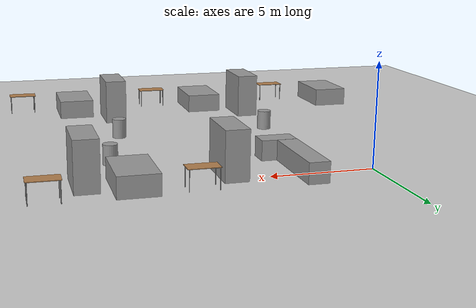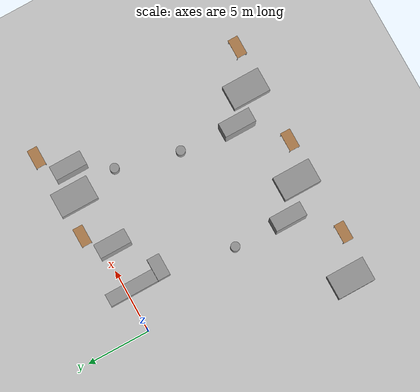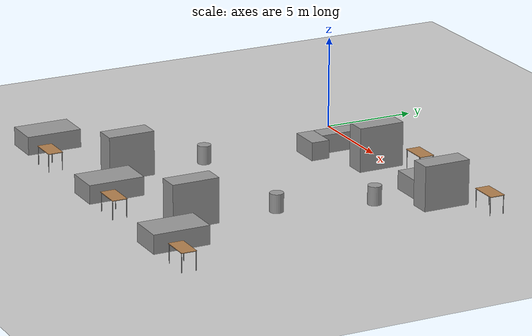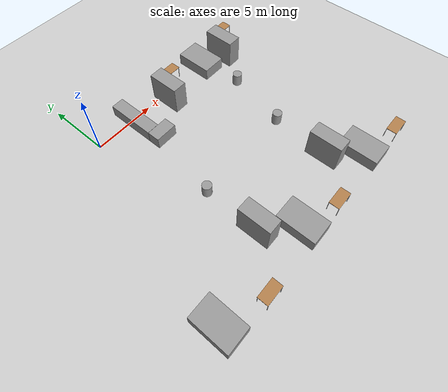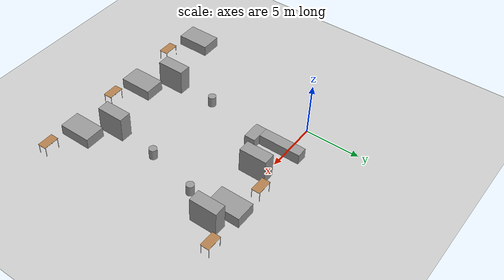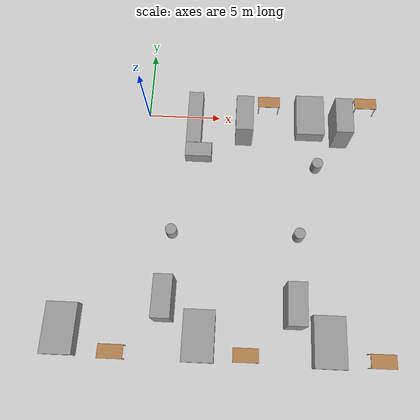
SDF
<sdf version="1.6">
 <world name="default">
  <model name="ground_plane">
   <static>1</static>
   <link name="link">
    <collision name="collision">
     <geometry><plane><normal>0 0 1</normal><size>100 100</size></plane></geometry>
     <surface><friction><ode><mu>100</mu><mu2>50</mu2></ode></friction></surface>
    </collision>
    <visual name="visual">
     <cast_shadows>0</cast_shadows>
     <geometry><plane><normal>0 0 1</normal><size>100 100</size></plane></geometry>
     <material>
      <script><uri>file://media/materials/scripts/gazebo.material</uri><name>Gazebo/Grey</name></script>
     </material>
    </visual>
   </link>
  </model>
  <model name="unit_box">
   <pose>3.2998 -0.444177 0.499344 -0.000337 -0 1e-06</pose>
   <link name="link">
    <inertial>
     <mass>1</mass>
     <inertia>
      <ixx>0.166667</ixx>
      <ixy>0</ixy>
      <ixz>0</ixz>
      <iyy>0.166667</iyy>
      <iyz>0</iyz>
      <izz>0.166667</izz>
     </inertia>
    </inertial>
    <collision name="collision"><geometry><box><size>1 3.8944 1</size></box></geometry></collision>
    <visual name="visual">
     <geometry><box><size>1 3.8944 1</size></box></geometry>
     <material>
      <script><name>Gazebo/Grey</name><uri>file://media/materials/scripts/gazebo.material</uri></script>
     </material>
    </visual>
   </link>
  </model>
  <model name="unit_box_0">
   <pose>3.68233 -2.9013 0.5 -0 -0 -3e-06</pose>
   <link name="link">
    <inertial>
     <mass>1</mass>
     <inertia>
      <ixx>0.166667</ixx>
      <ixy>0</ixy>
      <ixz>0</ixz>
      <iyy>0.166667</iyy>
      <iyz>0</iyz>
      <izz>0.166667</izz>
     </inertia>
    </inertial>
    <collision name="collision"><geometry><box><size>1.75689 1 1</size></box></geometry></collision>
    <visual name="visual">
     <geometry><box><size>1.75689 1 1</size></box></geometry>
     <material>
      <script><name>Gazebo/Grey</name><uri>file://media/materials/scripts/gazebo.material</uri></script>
     </material>
    </visual>
   </link>
  </model>
  <model name="unit_box_1">
   <pose>-3.83089 -14.795 0.499826 0.000116 -0 0</pose>
   <link name="link">
    <inertial>
     <mass>1</mass>
     <inertia>
      <ixx>0.166667</ixx>
      <ixy>0</ixy>
      <ixz>0</ixz>
      <iyy>0.166667</iyy>
      <iyz>0</iyz>
      <izz>0.166667</izz>
     </inertia>
    </inertial>
    <collision name="collision"><geometry><box><size>1.90543 2.99439 1</size></box></geometry></collision>
    <visual name="visual">
     <geometry><box><size>1.90543 2.99439 1</size></box></geometry>
     <material>
      <script><name>Gazebo/Grey</name><uri>file://media/materials/scripts/gazebo.material</uri></script>
     </material>
    </visual>
   </link>
  </model>
  <model name="unit_box_2">
   <pose>2.22958 -12.8856 1.19041 0 -0 9.2e-05</pose>
   <link name="link">
    <inertial>
     <mass>1</mass>
     <inertia>
      <ixx>0.166667</ixx>
      <ixy>0</ixy>
      <ixz>0</ixz>
      <iyy>0.166667</iyy>
      <iyz>0</iyz>
      <izz>0.166667</izz>
     </inertia>
    </inertial>
    <collision name="collision"><geometry><box><size>1.13758 2.51147 2.38082</size></box></geometry></collision>
    <visual name="visual">
     <geometry><box><size>1.13758 2.51147 2.38082</size></box></geometry>
     <material>
      <script><name>Gazebo/Grey</name><uri>file://media/materials/scripts/gazebo.material</uri></script>
     </material>
    </visual>
   </link>
  </model>
  <model name="table">
   <static>1</static>
   <link name="link">
    <collision name="surface">
     <pose>0 0 1 0 -0 0</pose>
     <geometry><box><size>1.5 0.8 0.03</size></box></geometry>
     <surface><friction><ode><mu>0.6</mu><mu2>0.6</mu2></ode></friction></surface>
    </collision>
    <visual name="visual1">
     <pose>0 0 1 0 -0 0</pose>
     <geometry><box><size>1.5 0.8 0.03</size></box></geometry>
     <material>
      <script><uri>file://media/materials/scripts/gazebo.material</uri><name>Gazebo/Wood</name></script>
     </material>
    </visual>
    <collision name="front_left_leg">
     <pose>0.68 0.38 0.5 0 -0 0</pose>
     <geometry><cylinder><radius>0.02</radius><length>1</length></cylinder></geometry>
    </collision>
    <visual name="front_left_leg">
     <pose>0.68 0.38 0.5 0 -0 0</pose>
     <geometry><cylinder><radius>0.02</radius><length>1</length></cylinder></geometry>
     <material>
      <script><uri>file://media/materials/scripts/gazebo.material</uri><name>Gazebo/Grey</name></script>
     </material>
    </visual>
    <collision name="front_right_leg">
     <pose>0.68 -0.38 0.5 0 -0 0</pose>
     <geometry><cylinder><radius>0.02</radius><length>1</length></cylinder></geometry>
    </collision>
    <visual name="front_right_leg">
     <pose>0.68 -0.38 0.5 0 -0 0</pose>
     <geometry><cylinder><radius>0.02</radius><length>1</length></cylinder></geometry>
     <material>
      <script><uri>file://media/materials/scripts/gazebo.material</uri><name>Gazebo/Grey</name></script>
     </material>
    </visual>
    <collision name="back_right_leg">
     <pose>-0.68 -0.38 0.5 0 -0 0</pose>
     <geometry><cylinder><radius>0.02</radius><length>1</length></cylinder></geometry>
    </collision>
    <visual name="back_right_leg">
     <pose>-0.68 -0.38 0.5 0 -0 0</pose>
     <geometry><cylinder><radius>0.02</radius><length>1</length></cylinder></geometry>
     <material>
      <script><uri>file://media/materials/scripts/gazebo.material</uri><name>Gazebo/Grey</name></script>
     </material>
    </visual>
    <collision name="back_left_leg">
     <pose>-0.68 0.38 0.5 0 -0 0</pose>
     <geometry><cylinder><radius>0.02</radius><length>1</length></cylinder></geometry>
    </collision>
    <visual name="back_left_leg">
     <pose>-0.68 0.38 0.5 0 -0 0</pose>
     <geometry><cylinder><radius>0.02</radius><length>1</length></cylinder></geometry>
     <material>
      <script><uri>file://media/materials/scripts/gazebo.material</uri><name>Gazebo/Grey</name></script>
     </material>
    </visual>
   </link>
   <pose>-0.637002 -15.9868 0 0 -0 0</pose>
  </model>
  <model name="unit_cylinder">
   <pose>2.28154 -8.54366 0.499997 1e-06 1e-06 0</pose>
   <link name="link">
    <inertial>
     <mass>1</mass>
     <inertia><ixx>0.145833</ixx><ixy>0</ixy><ixz>0</ixz><iyy>0.145833</iyy><iyz>0</iyz><izz>0.125</izz></inertia>
    </inertial>
    <collision name="collision">
     <geometry><cylinder><radius>0.361483</radius><length>1</length></cylinder></geometry>
    </collision>
    <visual name="visual">
     <geometry><cylinder><radius>0.361483</radius><length>1</length></cylinder></geometry>
     <material>
      <script><name>Gazebo/Grey</name><uri>file://media/materials/scripts/gazebo.material</uri></script>
     </material>
    </visual>
   </link>
  </model>
  <model name="unit_box_1_clone">
   <pose>4.40143 -14.8913 0.499995 0 5e-06 4.6e-05</pose>
   <link name="link">
    <inertial>
     <mass>1</mass>
     <inertia>
      <ixx>0.166667</ixx>
      <ixy>0</ixy>
      <ixz>0</ixz>
      <iyy>0.166667</iyy>
      <iyz>0</iyz>
      <izz>0.166667</izz>
     </inertia>
    </inertial>
    <collision name="collision"><geometry><box><size>1.90543 2.99439 1</size></box></geometry></collision>
    <visual name="visual">
     <geometry><box><size>1.90543 2.99439 1</size></box></geometry>
     <material>
      <script><name>Gazebo/Grey</name><uri>file://media/materials/scripts/gazebo.material</uri></script>
     </material>
    </visual>
   </link>
  </model>
  <model name="unit_box_1_clone_0">
   <pose>12.1162 -14.9285 0.499826 -0.000116 -0 1.3e-05</pose>
   <link name="link">
    <inertial>
     <mass>1</mass>
     <inertia>
      <ixx>0.166667</ixx>
      <ixy>0</ixy>
      <ixz>0</ixz>
      <iyy>0.166667</iyy>
      <iyz>0</iyz>
      <izz>0.166667</izz>
     </inertia>
    </inertial>
    <collision name="collision"><geometry><box><size>1.90543 2.99439 1</size></box></geometry></collision>
    <visual name="visual">
     <geometry><box><size>1.90543 2.99439 1</size></box></geometry>
     <material>
      <script><name>Gazebo/Grey</name><uri>file://media/materials/scripts/gazebo.material</uri></script>
     </material>
    </visual>
   </link>
  </model>
  <model name="unit_box_1_clone_5">
   <pose>11.2277 0.005864 0.499995 -0 -5e-06 -5.8e-05</pose>
   <link name="link">
    <inertial>
     <mass>1</mass>
     <inertia>
      <ixx>0.166667</ixx>
      <ixy>0</ixy>
      <ixz>0</ixz>
      <iyy>0.166667</iyy>
      <iyz>0</iyz>
      <izz>0.166667</izz>
     </inertia>
    </inertial>
    <collision name="collision"><geometry><box><size>1.90543 2.99439 1</size></box></geometry></collision>
    <visual name="visual">
     <geometry><box><size>1.90543 2.99439 1</size></box></geometry>
     <material>
      <script><name>Gazebo/Grey</name><uri>file://media/materials/scripts/gazebo.material</uri></script>
     </material>
    </visual>
   </link>
  </model>
  <model name="unit_cylinder_clone">
   <pose>10.4238 -8.47668 0.499993 -0 -0 -0</pose>
   <link name="link">
    <inertial>
     <mass>1</mass>
     <inertia><ixx>0.145833</ixx><ixy>0</ixy><ixz>0</ixz><iyy>0.145833</iyy><iyz>0</iyz><izz>0.125</izz></inertia>
    </inertial>
    <collision name="collision">
     <geometry><cylinder><radius>0.361483</radius><length>1</length></cylinder></geometry>
    </collision>
    <visual name="visual">
     <geometry><cylinder><radius>0.361483</radius><length>1</length></cylinder></geometry>
     <material>
      <script><name>Gazebo/Grey</name><uri>file://media/materials/scripts/gazebo.material</uri></script>
     </material>
    </visual>
   </link>
  </model>
  <model name="unit_box_2_clone">
   <pose>10.0557 -12.9992 1.19041 0 -0 9.3e-05</pose>
   <link name="link">
    <inertial>
     <mass>1</mass>
     <inertia>
      <ixx>0.166667</ixx>
      <ixy>0</ixy>
      <ixz>0</ixz>
      <iyy>0.166667</iyy>
      <iyz>0</iyz>
      <izz>0.166667</izz>
     </inertia>
    </inertial>
    <collision name="collision"><geometry><box><size>1.13758 2.51147 2.38082</size></box></geometry></collision>
    <visual name="visual">
     <geometry><box><size>1.13758 2.51147 2.38082</size></box></geometry>
     <material>
      <script><name>Gazebo/Grey</name><uri>file://media/materials/scripts/gazebo.material</uri></script>
     </material>
    </visual>
   </link>
  </model>
  <model name="unit_box_2_clone_5">
   <pose>13.2562 -0.684257 1.19041 0 -0 9.3e-05</pose>
   <link name="link">
    <inertial>
     <mass>1</mass>
     <inertia>
      <ixx>0.166667</ixx>
      <ixy>0</ixy>
      <ixz>0</ixz>
      <iyy>0.166667</iyy>
      <iyz>0</iyz>
      <izz>0.166667</izz>
     </inertia>
    </inertial>
    <collision name="collision"><geometry><box><size>1.13758 2.51147 2.38082</size></box></geometry></collision>
    <visual name="visual">
     <geometry><box><size>1.13758 2.51147 2.38082</size></box></geometry>
     <material>
      <script><name>Gazebo/Grey</name><uri>file://media/materials/scripts/gazebo.material</uri></script>
     </material>
    </visual>
   </link>
  </model>
  <model name="unit_box_2_clone_6">
   <pose>6.69613 -0.765561 1.19041 0 -0 9.3e-05</pose>
   <link name="link">
    <inertial>
     <mass>1</mass>
     <inertia>
      <ixx>0.166667</ixx>
      <ixy>0</ixy>
      <ixz>0</ixz>
      <iyy>0.166667</iyy>
      <iyz>0</iyz>
      <izz>0.166667</izz>
     </inertia>
    </inertial>
    <collision name="collision"><geometry><box><size>1.13758 2.51147 2.38082</size></box></geometry></collision>
    <visual name="visual">
     <geometry><box><size>1.13758 2.51147 2.38082</size></box></geometry>
     <material>
      <script><name>Gazebo/Grey</name><uri>file://media/materials/scripts/gazebo.material</uri></script>
     </material>
    </visual>
   </link>
  </model>
  <model name="table_clone">
   <static>1</static>
   <link name="link">
    <collision name="surface">
     <pose>0 0 1 0 -0 0</pose>
     <geometry><box><size>1.5 0.8 0.03</size></box></geometry>
     <surface><friction><ode><mu>0.6</mu><mu2>0.6</mu2></ode></friction></surface>
    </collision>
    <visual name="visual1">
     <pose>0 0 1 0 -0 0</pose>
     <geometry><box><size>1.5 0.8 0.03</size></box></geometry>
     <material>
      <script><uri>file://media/materials/scripts/gazebo.material</uri><name>Gazebo/Wood</name></script>
     </material>
    </visual>
    <collision name="front_left_leg">
     <pose>0.68 0.38 0.5 0 -0 0</pose>
     <geometry><cylinder><radius>0.02</radius><length>1</length></cylinder></geometry>
    </collision>
    <visual name="front_left_leg">
     <pose>0.68 0.38 0.5 0 -0 0</pose>
     <geometry><cylinder><radius>0.02</radius><length>1</length></cylinder></geometry>
     <material>
      <script><uri>file://media/materials/scripts/gazebo.material</uri><name>Gazebo/Grey</name></script>
     </material>
    </visual>
    <collision name="front_right_leg">
     <pose>0.68 -0.38 0.5 0 -0 0</pose>
     <geometry><cylinder><radius>0.02</radius><length>1</length></cylinder></geometry>
    </collision>
    <visual name="front_right_leg">
     <pose>0.68 -0.38 0.5 0 -0 0</pose>
     <geometry><cylinder><radius>0.02</radius><length>1</length></cylinder></geometry>
     <material>
      <script><uri>file://media/materials/scripts/gazebo.material</uri><name>Gazebo/Grey</name></script>
     </material>
    </visual>
    <collision name="back_right_leg">
     <pose>-0.68 -0.38 0.5 0 -0 0</pose>
     <geometry><cylinder><radius>0.02</radius><length>1</length></cylinder></geometry>
    </collision>
    <visual name="back_right_leg">
     <pose>-0.68 -0.38 0.5 0 -0 0</pose>
     <geometry><cylinder><radius>0.02</radius><length>1</length></cylinder></geometry>
     <material>
      <script><uri>file://media/materials/scripts/gazebo.material</uri><name>Gazebo/Grey</name></script>
     </material>
    </visual>
    <collision name="back_left_leg">
     <pose>-0.68 0.38 0.5 0 -0 0</pose>
     <geometry><cylinder><radius>0.02</radius><length>1</length></cylinder></geometry>
    </collision>
    <visual name="back_left_leg">
     <pose>-0.68 0.38 0.5 0 -0 0</pose>
     <geometry><cylinder><radius>0.02</radius><length>1</length></cylinder></geometry>
     <material>
      <script><uri>file://media/materials/scripts/gazebo.material</uri><name>Gazebo/Grey</name></script>
     </material>
    </visual>
   </link>
   <pose>7.19745 -15.8766 0 0 -0 0</pose>
  </model>
  <model name="table_clone_0">
   <static>1</static>
   <link name="link">
    <collision name="surface">
     <pose>0 0 1 0 -0 0</pose>
     <geometry><box><size>1.5 0.8 0.03</size></box></geometry>
     <surface><friction><ode><mu>0.6</mu><mu2>0.6</mu2></ode></friction></surface>
    </collision>
    <visual name="visual1">
     <pose>0 0 1 0 -0 0</pose>
     <geometry><box><size>1.5 0.8 0.03</size></box></geometry>
     <material>
      <script><uri>file://media/materials/scripts/gazebo.material</uri><name>Gazebo/Wood</name></script>
     </material>
    </visual>
    <collision name="front_left_leg">
     <pose>0.68 0.38 0.5 0 -0 0</pose>
     <geometry><cylinder><radius>0.02</radius><length>1</length></cylinder></geometry>
    </collision>
    <visual name="front_left_leg">
     <pose>0.68 0.38 0.5 0 -0 0</pose>
     <geometry><cylinder><radius>0.02</radius><length>1</length></cylinder></geometry>
     <material>
      <script><uri>file://media/materials/scripts/gazebo.material</uri><name>Gazebo/Grey</name></script>
     </material>
    </visual>
    <collision name="front_right_leg">
     <pose>0.68 -0.38 0.5 0 -0 0</pose>
     <geometry><cylinder><radius>0.02</radius><length>1</length></cylinder></geometry>
    </collision>
    <visual name="front_right_leg">
     <pose>0.68 -0.38 0.5 0 -0 0</pose>
     <geometry><cylinder><radius>0.02</radius><length>1</length></cylinder></geometry>
     <material>
      <script><uri>file://media/materials/scripts/gazebo.material</uri><name>Gazebo/Grey</name></script>
     </material>
    </visual>
    <collision name="back_right_leg">
     <pose>-0.68 -0.38 0.5 0 -0 0</pose>
     <geometry><cylinder><radius>0.02</radius><length>1</length></cylinder></geometry>
    </collision>
    <visual name="back_right_leg">
     <pose>-0.68 -0.38 0.5 0 -0 0</pose>
     <geometry><cylinder><radius>0.02</radius><length>1</length></cylinder></geometry>
     <material>
      <script><uri>file://media/materials/scripts/gazebo.material</uri><name>Gazebo/Grey</name></script>
     </material>
    </visual>
    <collision name="back_left_leg">
     <pose>-0.68 0.38 0.5 0 -0 0</pose>
     <geometry><cylinder><radius>0.02</radius><length>1</length></cylinder></geometry>
    </collision>
    <visual name="back_left_leg">
     <pose>-0.68 0.38 0.5 0 -0 0</pose>
     <geometry><cylinder><radius>0.02</radius><length>1</length></cylinder></geometry>
     <material>
      <script><uri>file://media/materials/scripts/gazebo.material</uri><name>Gazebo/Grey</name></script>
     </material>
    </visual>
   </link>
   <pose>15.1339 -15.8739 0 0 -0 0</pose>
  </model>
  <model name="table_clone_5">
   <static>1</static>
   <link name="link">
    <collision name="surface">
     <pose>0 0 1 0 -0 0</pose>
     <geometry><box><size>1.5 0.8 0.03</size></box></geometry>
     <surface><friction><ode><mu>0.6</mu><mu2>0.6</mu2></ode></friction></surface>
    </collision>
    <visual name="visual1">
     <pose>0 0 1 0 -0 0</pose>
     <geometry><box><size>1.5 0.8 0.03</size></box></geometry>
     <material>
      <script><uri>file://media/materials/scripts/gazebo.material</uri><name>Gazebo/Wood</name></script>
     </material>
    </visual>
    <collision name="front_left_leg">
     <pose>0.68 0.38 0.5 0 -0 0</pose>
     <geometry><cylinder><radius>0.02</radius><length>1</length></cylinder></geometry>
    </collision>
    <visual name="front_left_leg">
     <pose>0.68 0.38 0.5 0 -0 0</pose>
     <geometry><cylinder><radius>0.02</radius><length>1</length></cylinder></geometry>
     <material>
      <script><uri>file://media/materials/scripts/gazebo.material</uri><name>Gazebo/Grey</name></script>
     </material>
    </visual>
    <collision name="front_right_leg">
     <pose>0.68 -0.38 0.5 0 -0 0</pose>
     <geometry><cylinder><radius>0.02</radius><length>1</length></cylinder></geometry>
    </collision>
    <visual name="front_right_leg">
     <pose>0.68 -0.38 0.5 0 -0 0</pose>
     <geometry><cylinder><radius>0.02</radius><length>1</length></cylinder></geometry>
     <material>
      <script><uri>file://media/materials/scripts/gazebo.material</uri><name>Gazebo/Grey</name></script>
     </material>
    </visual>
    <collision name="back_right_leg">
     <pose>-0.68 -0.38 0.5 0 -0 0</pose>
     <geometry><cylinder><radius>0.02</radius><length>1</length></cylinder></geometry>
    </collision>
    <visual name="back_right_leg">
     <pose>-0.68 -0.38 0.5 0 -0 0</pose>
     <geometry><cylinder><radius>0.02</radius><length>1</length></cylinder></geometry>
     <material>
      <script><uri>file://media/materials/scripts/gazebo.material</uri><name>Gazebo/Grey</name></script>
     </material>
    </visual>
    <collision name="back_left_leg">
     <pose>-0.68 0.38 0.5 0 -0 0</pose>
     <geometry><cylinder><radius>0.02</radius><length>1</length></cylinder></geometry>
    </collision>
    <visual name="back_left_leg">
     <pose>-0.68 0.38 0.5 0 -0 0</pose>
     <geometry><cylinder><radius>0.02</radius><length>1</length></cylinder></geometry>
     <material>
      <script><uri>file://media/materials/scripts/gazebo.material</uri><name>Gazebo/Grey</name></script>
     </material>
    </visual>
   </link>
   <pose>8.37376 0.883401 0 0 -0 0</pose>
  </model>
  <model name="table_clone_6">
   <static>1</static>
   <link name="link">
    <collision name="surface">
     <pose>0 0 1 0 -0 0</pose>
     <geometry><box><size>1.5 0.8 0.03</size></box></geometry>
     <surface><friction><ode><mu>0.6</mu><mu2>0.6</mu2></ode></friction></surface>
    </collision>
    <visual name="visual1">
     <pose>0 0 1 0 -0 0</pose>
     <geometry><box><size>1.5 0.8 0.03</size></box></geometry>
     <material>
      <script><uri>file://media/materials/scripts/gazebo.material</uri><name>Gazebo/Wood</name></script>
     </material>
    </visual>
    <collision name="front_left_leg">
     <pose>0.68 0.38 0.5 0 -0 0</pose>
     <geometry><cylinder><radius>0.02</radius><length>1</length></cylinder></geometry>
    </collision>
    <visual name="front_left_leg">
     <pose>0.68 0.38 0.5 0 -0 0</pose>
     <geometry><cylinder><radius>0.02</radius><length>1</length></cylinder></geometry>
     <material>
      <script><uri>file://media/materials/scripts/gazebo.material</uri><name>Gazebo/Grey</name></script>
     </material>
    </visual>
    <collision name="front_right_leg">
     <pose>0.68 -0.38 0.5 0 -0 0</pose>
     <geometry><cylinder><radius>0.02</radius><length>1</length></cylinder></geometry>
    </collision>
    <visual name="front_right_leg">
     <pose>0.68 -0.38 0.5 0 -0 0</pose>
     <geometry><cylinder><radius>0.02</radius><length>1</length></cylinder></geometry>
     <material>
      <script><uri>file://media/materials/scripts/gazebo.material</uri><name>Gazebo/Grey</name></script>
     </material>
    </visual>
    <collision name="back_right_leg">
     <pose>-0.68 -0.38 0.5 0 -0 0</pose>
     <geometry><cylinder><radius>0.02</radius><length>1</length></cylinder></geometry>
    </collision>
    <visual name="back_right_leg">
     <pose>-0.68 -0.38 0.5 0 -0 0</pose>
     <geometry><cylinder><radius>0.02</radius><length>1</length></cylinder></geometry>
     <material>
      <script><uri>file://media/materials/scripts/gazebo.material</uri><name>Gazebo/Grey</name></script>
     </material>
    </visual>
    <collision name="back_left_leg">
     <pose>-0.68 0.38 0.5 0 -0 0</pose>
     <geometry><cylinder><radius>0.02</radius><length>1</length></cylinder></geometry>
    </collision>
    <visual name="back_left_leg">
     <pose>-0.68 0.38 0.5 0 -0 0</pose>
     <geometry><cylinder><radius>0.02</radius><length>1</length></cylinder></geometry>
     <material>
      <script><uri>file://media/materials/scripts/gazebo.material</uri><name>Gazebo/Grey</name></script>
     </material>
    </visual>
   </link>
   <pose>15.0803 1.04265 0 0 -0 0</pose>
  </model>
  <model name="unit_cylinder_clone_3">
   <pose>11.6494 -3.59513 0.499993 -1e-06 -1e-06 0</pose>
   <link name="link">
    <inertial>
     <mass>1</mass>
     <inertia><ixx>0.145833</ixx><ixy>0</ixy><ixz>0</ixz><iyy>0.145833</iyy><iyz>0</iyz><izz>0.125</izz></inertia>
    </inertial>
    <collision name="collision">
     <geometry><cylinder><radius>0.361483</radius><length>1</length></cylinder></geometry>
    </collision>
    <visual name="visual">
     <geometry><cylinder><radius>0.361483</radius><length>1</length></cylinder></geometry>
     <material>
      <script><name>Gazebo/Grey</name><uri>file://media/materials/scripts/gazebo.material</uri></script>
     </material>
    </visual>
   </link>
  </model>
 </world>
</sdf>
